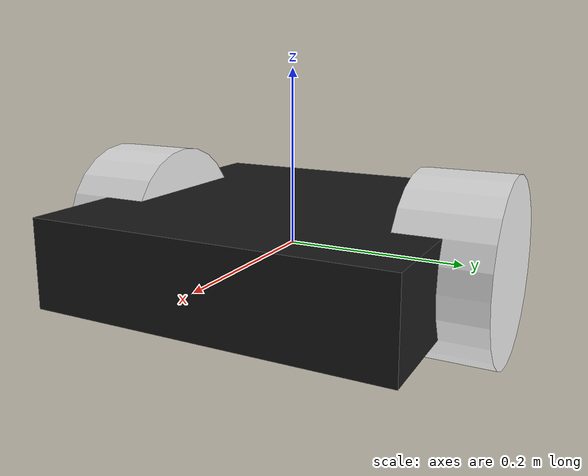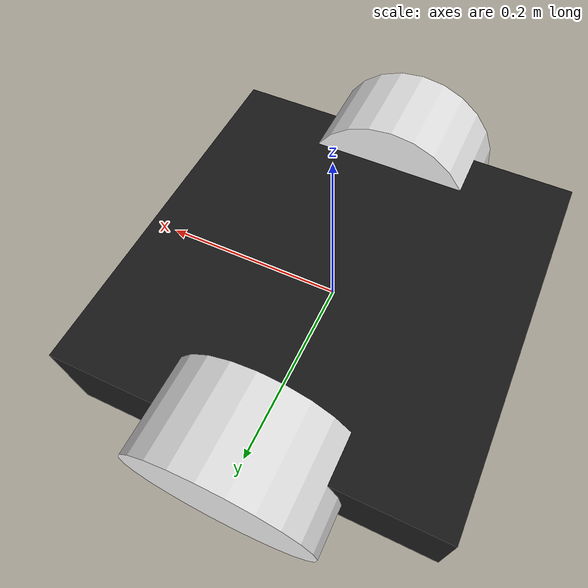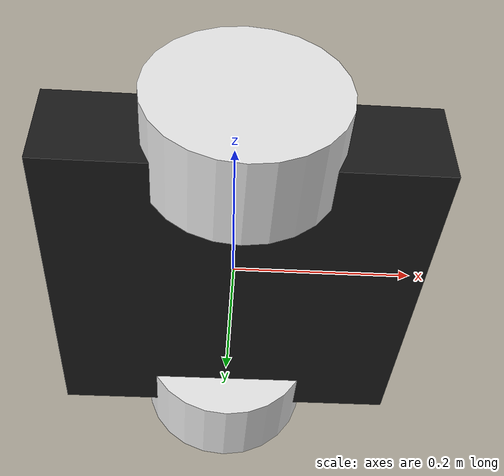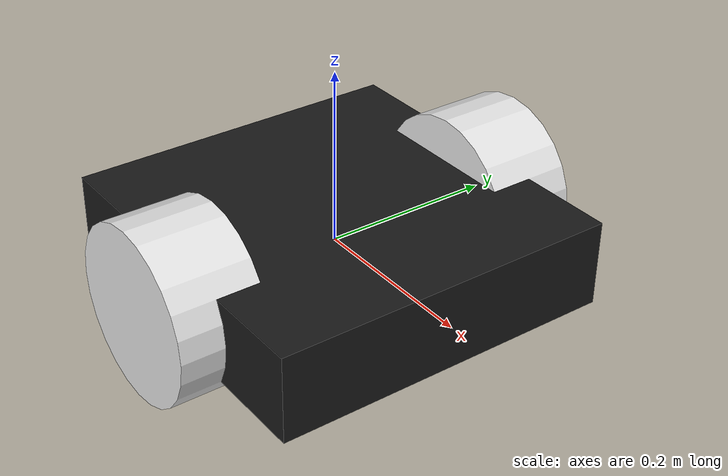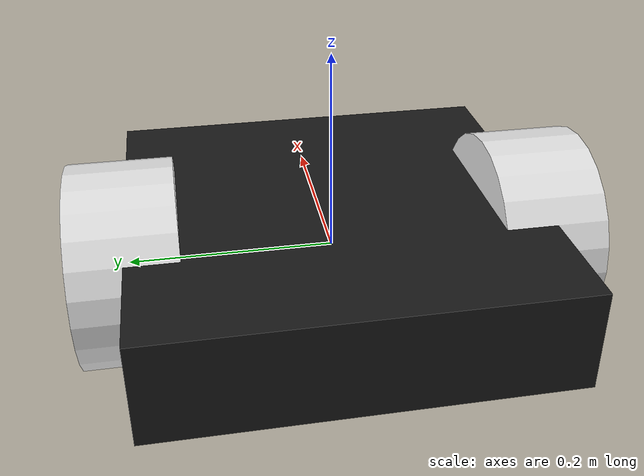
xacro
<?xml version="1.0"?>
<robot xmlns:xacro="http://www.ros.org/wiki/xacro" name="track_robot" >

  <xacro:include filename="$(find track_robot_hw)/urdf/common.urdf.xacro" />
  <xacro:include filename="$(find track_robot_hw)/urdf/materials.urdf.xacro" />

  <xacro:macro name="wheel" params="name parent *origin">

    <joint name="${name}_joint" type="continuous" >
      <parent link="${parent}" />
      <child link="${name}" />
      <xacro:insert_block name="origin" />
      <axis xyz="0 0 1" rpy="0 0 0" />
      <limit effort="30" velocity="0.2" />
    </joint>

    <link name="${name}">
      <visual>
        <geometry>
          <cylinder radius="0.1" length="0.1" />
        </geometry>
        <material name="LightGrey2"/>
      </visual>
      <collision >
        <geometry>
          <cylinder radius="0.11" length="0.11" />
        </geometry>
      </collision>
    </link>

    <transmission name="${name}_trans" type="SimpleTransmission">
			<type>transmission_interface/SimpleTransmission</type>
			<actuator name="${name}_motor">
				<mechanicalReduction>1</mechanicalReduction>
			</actuator>
			<joint name="${name}_joint">
				<hardwareInterface>hardware_interface/VelocityJointInterface</hardwareInterface>
			</joint>
		</transmission>

  </xacro:macro>

  <link name="base_link" >
    <origin xyz="0 0 ${0.1/2 + 0.1}" rpy="0 0 0" />
    <visual>
      <geometry>
        <box size="0.4 0.4 0.1" />
      </geometry>
      <material name="Black"/>
    </visual>
  </link>

	<xacro:wheel name="left_wheel" parent="base_link" >
		<origin xyz="0 0.2 0" rpy="-${M_PI/2} 0 0" />
	</xacro:wheel>

  <xacro:wheel name="right_wheel" parent="base_link" >
		<origin xyz="0 -0.2 0" rpy="-${M_PI/2} 0 0" />
	</xacro:wheel>

</robot>

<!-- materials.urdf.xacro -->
<!-- include materials at top level urdf -->

<robot>

  <!-- material block colours -->
  <material name="Blue">
    <color rgba="0.0 0.0 0.8 1.0"/>
  </material>

  <material name="Green">
    <color rgba="0.0 0.8 0.0 1.0"/>
  </material>

  <material name="Red">
    <color rgba="0.8 0.0 0.0 1.0"/>
  </material>

  <material name="White">
    <color rgba="1.0 1.0 1.0 1.0"/>
  </material>

  <material name="Black">
    <color rgba="0.1 0.1 0.1 1.0"/>
  </material>

  <material name="DarkGrey">
    <color rgba="0.4 0.4 0.4 1.0"/>
  </material>

  <material name="DarkGrey2">
    <color rgba="0.3 0.3 0.3 1.0"/>
  </material>

  <material name="LightGrey">
    <color rgba="0.6 0.6 0.6 1.0"/>
  </material>

  <material name="LightGrey2">
    <color rgba="0.9 0.9 0.9 1.0"/>
  </material>

  <material name="Brown">
    <color rgba="0.8 0.7 0.5 1.0"/>
  </material>

</robot>
